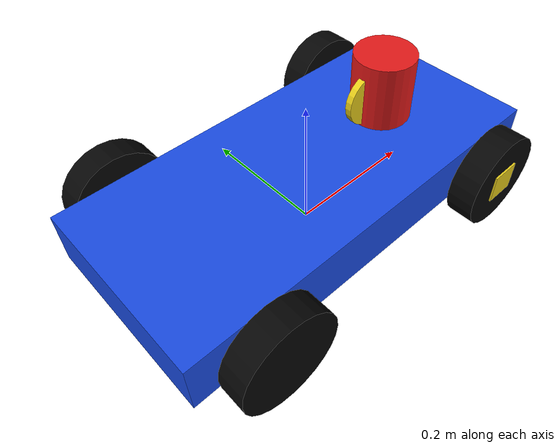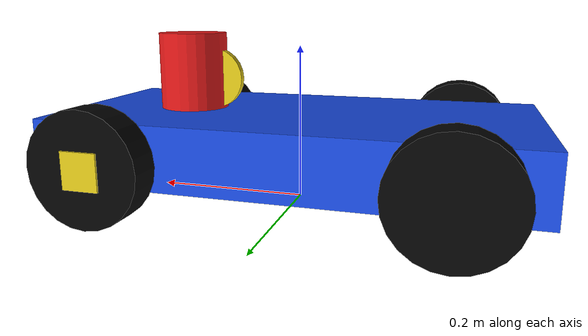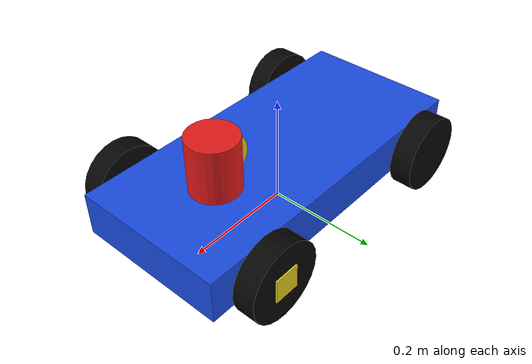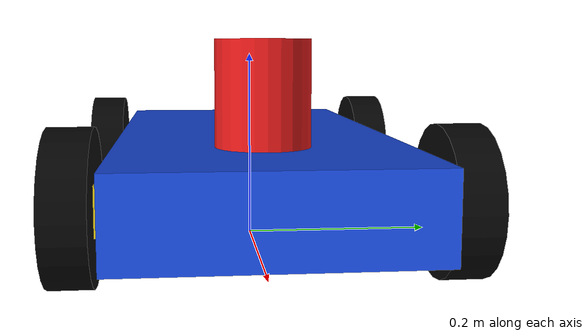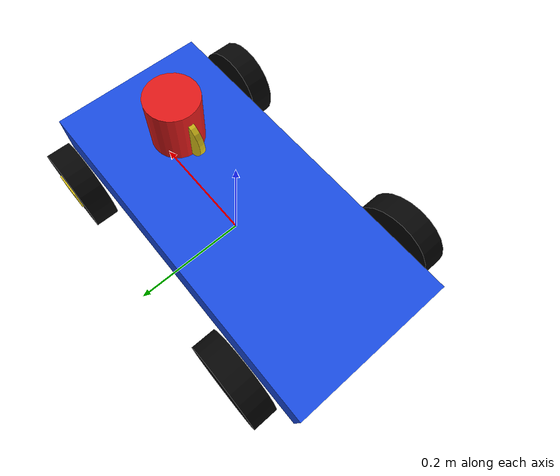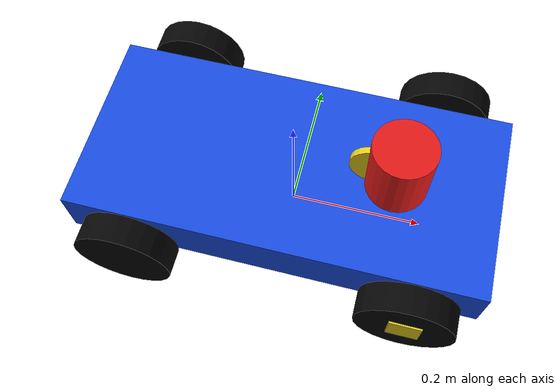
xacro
<?xml version="1.0"?>

<robot name="mini_car" xmlns:xacro="http://www.ros.org/wiki/xacro">

  <!-- Parameters -->

  <xacro:property name="base_length" value="0.60"/>
  <xacro:property name="base_width" value="0.28"/>
  <xacro:property name="base_height" value="0.08"/>

  <!-- Distance from ground to bottom of chassis -->
  <xacro:property name="ground_clearance" value="0.035"/>

  <xacro:property name="wheel_radius" value="0.07"/>
  <xacro:property name="wheel_width" value="0.04"/>

  <xacro:property name="front_axle_x" value="0.20"/>
  <xacro:property name="rear_axle_x" value="-0.20"/>
  <xacro:property name="wheel_y" value="0.17"/>

  <xacro:property name="lidar_radius" value="0.045"/>
  <xacro:property name="lidar_height" value="0.1"/>

  <!-- Ackermann drive parameters -->
  <xacro:property name="wheel_base" value="${front_axle_x - rear_axle_x}"/>
  <xacro:property name="track_width" value="${wheel_y * 2.0}"/>
  <xacro:property name="max_steer_angle" value="0.6"/>
  <xacro:property name="max_speed" value="2.0"/>

  <!-- Derived values -->
  <xacro:property
    name="base_center_z"
    value="${ground_clearance + base_height / 2.0}"/>

  <xacro:property
    name="wheel_joint_z"
    value="${wheel_radius - base_center_z}"/>

  <!-- Materials -->

  <material name="blue">
    <color rgba="0.1 0.3 0.9 1.0"/>
  </material>

  <material name="black">
    <color rgba="0.02 0.02 0.02 1.0"/>
  </material>

  <material name="red">
    <color rgba="0.9 0.1 0.1 1.0"/>
  </material>

  <material name="yellow">
    <color rgba="0.9 0.8 0.1 1.0"/>
  </material>

  <!-- Macros -->

  <xacro:macro name="wheel_link" params="name">
    <link name="${name}">
      <visual>
        <!-- Cylinder default axis is Z. Rotate it so the wheel axis is Y. -->
        <origin xyz="0 0 0" rpy="1.5708 0 0"/>
        <geometry>
          <cylinder radius="${wheel_radius}" length="${wheel_width}"/>
        </geometry>
        <material name="black"/>
      </visual>

      <collision>
        <origin xyz="0 0 0" rpy="1.5708 0 0"/>
        <geometry>
          <cylinder radius="${wheel_radius}" length="${wheel_width}"/>
        </geometry>
      </collision>

      <inertial>
        <origin xyz="0 0 0" rpy="0 0 0"/>
        <mass value="0.25"/>
        <inertia
          ixx="0.001"
          ixy="0.0"
          ixz="0.0"
          iyy="0.001"
          iyz="0.0"
          izz="0.001"/>
      </inertial>
    </link>
  </xacro:macro>

  <xacro:macro name="steering_link" params="name">
    <link name="${name}">
      <visual>
        <origin xyz="0 0 0" rpy="0 0 0"/>
        <geometry>
          <box size="0.045 0.045 0.045"/>
        </geometry>
        <material name="yellow"/>
      </visual>

      <collision>
        <origin xyz="0 0 0" rpy="0 0 0"/>
        <geometry>
          <box size="0.045 0.045 0.045"/>
        </geometry>
      </collision>

      <inertial>
        <origin xyz="0 0 0" rpy="0 0 0"/>
        <mass value="0.1"/>
        <inertia
          ixx="0.0001"
          ixy="0.0"
          ixz="0.0"
          iyy="0.0001"
          iyz="0.0"
          izz="0.0001"/>
      </inertial>
    </link>
  </xacro:macro>

  <!-- Base footprint -->
  <!-- base_footprint is on the ground plane. -->

  <link name="base_footprint"/>

  <joint name="base_footprint_joint" type="fixed">
    <parent link="base_footprint"/>
    <child link="base_link"/>
    <origin xyz="0 0 ${base_center_z}" rpy="0 0 0"/>
  </joint>

  <!-- Base link -->

  <link name="base_link">
    <visual>
      <origin xyz="0 0 0" rpy="0 0 0"/>
      <geometry>
        <box size="${base_length} ${base_width} ${base_height}"/>
      </geometry>
      <material name="blue"/>
    </visual>

    <collision>
      <origin xyz="0 0 0" rpy="0 0 0"/>
      <geometry>
        <box size="${base_length} ${base_width} ${base_height}"/>
      </geometry>
    </collision>

    <inertial>
      <origin xyz="0 0 0" rpy="0 0 0"/>
      <mass value="3.0"/>
      <inertia
        ixx="0.04"
        ixy="0.0"
        ixz="0.0"
        iyy="0.08"
        iyz="0.0"
        izz="0.10"/>
    </inertial>
  </link>

  <!-- Front left steering + wheel -->

  <xacro:steering_link name="front_left_steering_link"/>
  <xacro:wheel_link name="front_left_wheel_link"/>

  <joint name="front_left_steering_joint" type="revolute">
    <parent link="base_link"/>
    <child link="front_left_steering_link"/>
    <origin xyz="${front_axle_x} ${wheel_y} ${wheel_joint_z}" rpy="0 0 0"/>
    <axis xyz="0 0 1"/>
    <limit lower="${-max_steer_angle}" upper="${max_steer_angle}" effort="100.0" velocity="2.0"/>
    <dynamics damping="1.0" friction="0.1"/>
  </joint>

  <joint name="front_left_wheel_joint" type="continuous">
    <parent link="front_left_steering_link"/>
    <child link="front_left_wheel_link"/>
    <origin xyz="0 0 0" rpy="0 0 0"/>
    <axis xyz="0 1 0"/>
    <dynamics damping="0.1" friction="0.1"/>
  </joint>

  <!-- Front right steering + wheel -->

  <xacro:steering_link name="front_right_steering_link"/>
  <xacro:wheel_link name="front_right_wheel_link"/>

  <joint name="front_right_steering_joint" type="revolute">
    <parent link="base_link"/>
    <child link="front_right_steering_link"/>
    <origin xyz="${front_axle_x} ${-wheel_y} ${wheel_joint_z}" rpy="0 0 0"/>
    <axis xyz="0 0 1"/>
    <limit lower="${-max_steer_angle}" upper="${max_steer_angle}" effort="100.0" velocity="2.0"/>
    <dynamics damping="1.0" friction="0.1"/>
  </joint>

  <joint name="front_right_wheel_joint" type="continuous">
    <parent link="front_right_steering_link"/>
    <child link="front_right_wheel_link"/>
    <origin xyz="0 0 0" rpy="0 0 0"/>
    <axis xyz="0 1 0"/>
    <dynamics damping="0.1" friction="0.0"/>
  </joint>

  <!-- Rear left wheel -->

  <xacro:wheel_link name="rear_left_wheel_link"/>

  <joint name="rear_left_wheel_joint" type="continuous">
    <parent link="base_link"/>
    <child link="rear_left_wheel_link"/>
    <origin xyz="${rear_axle_x} ${wheel_y} ${wheel_joint_z}" rpy="0 0 0"/>
    <axis xyz="0 1 0"/>
    <dynamics damping="0.1" friction="0.0"/>
  </joint>

  <!-- Rear right wheel -->

  <xacro:wheel_link name="rear_right_wheel_link"/>

  <joint name="rear_right_wheel_joint" type="continuous">
    <parent link="base_link"/>
    <child link="rear_right_wheel_link"/>
    <origin xyz="${rear_axle_x} ${-wheel_y} ${wheel_joint_z}" rpy="0 0 0"/>
    <axis xyz="0 1 0"/>
    <dynamics damping="0.1" friction="0.0"/>
  </joint>

  <!-- LiDAR -->

  <link name="lidar_link">
    <visual>
      <origin xyz="0 0 0" rpy="0 0 0"/>
      <geometry>
        <cylinder radius="${lidar_radius}" length="${lidar_height}"/>
      </geometry>
      <material name="red"/>
    </visual>

    <collision>
      <origin xyz="0 0 0" rpy="0 0 0"/>
      <geometry>
        <cylinder radius="${lidar_radius}" length="${lidar_height}"/>
      </geometry>
    </collision>

    <inertial>
      <origin xyz="0 0 0" rpy="0 0 0"/>
      <mass value="0.1"/>
      <inertia
        ixx="0.0001"
        ixy="0.0"
        ixz="0.0"
        iyy="0.0001"
        iyz="0.0"
        izz="0.0001"/>
    </inertial>
  </link>

  <joint name="lidar_joint" type="fixed">
    <parent link="base_link"/>
    <child link="lidar_link"/>
    <origin
      xyz="0.15 0 ${base_height / 2.0 + lidar_height / 2.0}"
      rpy="0 0 0"/>
  </joint>

  <gazebo reference="lidar_link">
    <sensor name="lidar_sensor" type="gpu_lidar">
      <topic>/scan</topic>
      <update_rate>10</update_rate>
      <lidar>
        <scan>
          <horizontal>
            <samples>720</samples>
            <resolution>1</resolution>
            <min_angle>-2.35619449</min_angle>
            <max_angle>2.35619449</max_angle>
          </horizontal>
        </scan>
        <range>
          <min>0.08</min>
          <max>8.0</max>
          <resolution>0.01</resolution>
        </range>
      </lidar>
      <always_on>true</always_on>
      <visualize>true</visualize>
    </sensor>
  </gazebo>

  <!-- Virtual steering wheel -->
  <!-- Used by gazebo_ros_ackermann_drive plugin -->

  <link name="steering_wheel_link">
    <visual>
      <origin xyz="0 0 0" rpy="1.5708 0 0"/>
      <geometry>
        <cylinder radius="0.04" length="0.01"/>
      </geometry>
      <material name="yellow"/>
    </visual>

    <collision>
      <origin xyz="0 0 0" rpy="1.5708 0 0"/>
      <geometry>
        <cylinder radius="0.04" length="0.01"/>
      </geometry>
    </collision>

    <inertial>
      <origin xyz="0 0 0" rpy="0 0 0"/>
      <mass value="0.05"/>
      <inertia
        ixx="0.00005"
        ixy="0.0"
        ixz="0.0"
        iyy="0.00005"
        iyz="0.0"
        izz="0.00005"/>
    </inertial>
  </link>

  <joint name="steering_wheel_joint" type="revolute">
    <parent link="base_link"/>
    <child link="steering_wheel_link"/>
    <origin xyz="0.12 0 0.08" rpy="0 0 0"/>
    <axis xyz="0 0 1"/>
    <limit lower="-7.85" upper="7.85" effort="10.0" velocity="5.0"/>
    <dynamics damping="0.1" friction="0.0"/>
  </joint>

  <!-- Gazebo visual/friction properties -->

  <gazebo reference="front_left_wheel_link">
    <mu1>1.5</mu1>
    <mu2>1.5</mu2>
    <kp>1000000.0</kp>
    <kd>100.0</kd>
  </gazebo>

  <gazebo reference="front_right_wheel_link">
    <mu1>1.5</mu1>
    <mu2>1.5</mu2>
    <kp>1000000.0</kp>
    <kd>100.0</kd>
  </gazebo>

  <gazebo reference="rear_left_wheel_link">
    <mu1>1.5</mu1>
    <mu2>1.5</mu2>
    <kp>1000000.0</kp>
    <kd>100.0</kd>
  </gazebo>

  <gazebo reference="rear_right_wheel_link">
    <mu1>1.5</mu1>
    <mu2>1.5</mu2>
    <kp>1000000.0</kp>
    <kd>100.0</kd>
  </gazebo>

  <!-- ros2_control configuration -->

  <ros2_control name="GazeboSimSystem" type="system">
    <hardware>
      <plugin>gz_ros2_control/GazeboSimSystem</plugin>
    </hardware>

    <!-- Front steering joints: position control -->
    <joint name="front_left_steering_joint">
      <command_interface name="position">
        <param name="min">-0.6</param>
        <param name="max">0.6</param>
      </command_interface>
      <state_interface name="position"/>
      <state_interface name="velocity"/>
    </joint>

    <joint name="front_right_steering_joint">
      <command_interface name="position">
        <param name="min">-0.6</param>
        <param name="max">0.6</param>
      </command_interface>
      <state_interface name="position"/>
      <state_interface name="velocity"/>
    </joint>

    <!-- Passive front wheel joints: expose state so robot_state_publisher can complete the TF tree. -->
    <joint name="front_left_wheel_joint">
      <state_interface name="position"/>
      <state_interface name="velocity"/>
    </joint>

    <joint name="front_right_wheel_joint">
      <state_interface name="position"/>
      <state_interface name="velocity"/>
    </joint>

    <!-- Rear wheel joints: velocity control -->
    <joint name="rear_left_wheel_joint">
      <command_interface name="velocity">
        <param name="min">-28.5714285714</param>
        <param name="max">28.5714285714</param>
      </command_interface>
      <state_interface name="position"/>
      <state_interface name="velocity"/>
    </joint>

    <joint name="rear_right_wheel_joint">
      <command_interface name="velocity">
        <param name="min">-28.5714285714</param>
        <param name="max">28.5714285714</param>
      </command_interface>
      <state_interface name="position"/>
      <state_interface name="velocity"/>
    </joint>

    <joint name="steering_wheel_joint">
      <state_interface name="position"/>
      <state_interface name="velocity"/>
    </joint>
  </ros2_control>

  <!-- GZ Sim ros2_control plugin -->

  <gazebo>
    <plugin
      filename="gz_ros2_control-system"
      name="gz_ros2_control::GazeboSimROS2ControlPlugin">
      <parameters>$(find mini_car_gazebo)/config/ros2_control.yaml</parameters>
    </plugin>
  </gazebo>

</robot>
